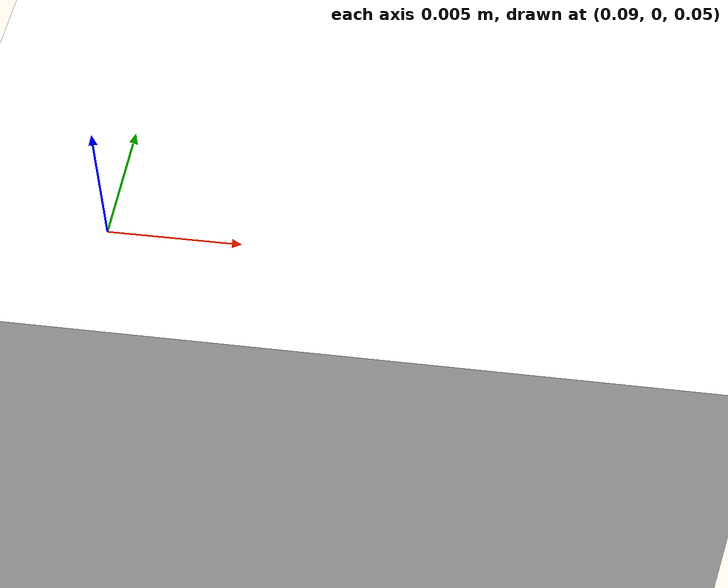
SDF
<?xml version="1.0" ?>
<sdf version="1.5">
  <world name="hitl_iris_world">
    <include>
      <uri>model://land_pad</uri>
      <pose>0 0 0.05 0 0 0</pose>
    </include>
    <scene>
      <ambient>0.7 0.7 0.7 1</ambient>
      <background>0.7 0.7 0.7 1</background>
      <shadows>false</shadows>
    </scene>

    <gui fullscreen='0'>
      <camera name='user_camera'>
        <pose>-12.0 -3.0 10.0 0 0.5 0.2</pose>
        <view_controller>orbit</view_controller>
        <projection_type>perspective</projection_type>
      </camera>
    </gui>

    <include>
      <uri>model://sun</uri>
    </include>

    <physics name='default_physics' default='0' type='ode'>
      <gravity>0 0 -9.8066</gravity>
      <ode>
        <solver>
          <type>quick</type>
          <iters>10</iters>
          <sor>1.3</sor>
          <use_dynamic_moi_rescaling>0</use_dynamic_moi_rescaling>
        </solver>
        <constraints>
          <cfm>0</cfm>
          <erp>0.2</erp>
          <contact_max_correcting_vel>100</contact_max_correcting_vel>
          <contact_surface_layer>0.001</contact_surface_layer>
        </constraints>
      </ode>
      <max_step_size>0.004</max_step_size>
      <real_time_factor>1</real_time_factor>
      <real_time_update_rate>250</real_time_update_rate>
      <magnetic_field>6.0e-6 2.3e-5 -4.2e-5</magnetic_field>
    </physics>
    <include>
      <uri>model://ground_plane</uri>
    </include>
    <include>
      <uri>model://asphalt_plane</uri>
    </include>
  </world>
</sdf>

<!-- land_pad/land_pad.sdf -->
<sdf version="1.5">
  <model name="land_pad">
    <pose>0.0 0.0 0.06 0 0 0</pose>
    <link name="link">
        <inertial>
        <pose>0 0 0 0 0 0</pose>
        <mass>10.0</mass>
        <inertia>
          <ixx>0.01</ixx>
          <ixy>0</ixy>
          <ixz>0</ixz>
          <iyy>0.01</iyy>
          <iyz>0</iyz>
          <izz>0.01</izz>
        </inertia>
      </inertial>
      <kinematic>true</kinematic>
      <collision name="collision">
        <geometry>
          <box>
            <size>0.8 0.8 0.01</size>
          </box>
        </geometry>
        <surface>
          <friction>
            <ode>
              <mu>1.0</mu>
              <mu2>1.0</mu2>
              <fdir1>1 0 0</fdir1>
            </ode>
          </friction>
          <contact>
            <ode>
              <kp>1e+12</kp>
              <kd>1</kd>
              <max_vel>10</max_vel>
              <min_depth>0.003</min_depth>
            </ode>
          </contact>
        </surface>
      </collision>
      <visual name="visual">
        <geometry>
          <box>
            <size>0.5 0.5 0.02</size>
          </box>
        </geometry>
        <!-- Aruco marker as the land pad structure -->
        <material>
          <script>
            <uri>model://land_pad/materials/scripts</uri>
            <uri>model://land_pad/materials/textures</uri>
            <name>ArucoVisualMarker0/Marker</name>
          </script>
          <ambient>1 1 1 1</ambient>
          <diffuse>1 1 1 1</diffuse>
          <specular>0 0 0 1</specular>
          <emissive>1 1 1 0</emissive>
          <shader type='vertex'>
            <normal_map>__default__</normal_map>
          </shader>
        </material>
      </visual>
    </link>
    <!-- Add a GPS on the land pad -->
    <include>
      <uri>model://gps</uri>
      <pose>0.1 0 0 0 0 0</pose>
      <name>gps_target</name>
    </include>
    <joint name='gps_target_joint' type='fixed'>
      <child>gps_target::link</child>
      <parent>link</parent>
    </joint>

    <plugin name="random" filename="libgazebo_random_velocity_plugin.so">

      <!-- Name of the link in this model that receives the velocity -->
      <link>link</link>

      <!-- Initial velocity that is applied to the link -->
      <initial_velocity>0 0 0</initial_velocity>

      <!-- Scaling factor that is used to compute a new velocity -->
      <velocity_factor>0.0</velocity_factor>

      <!-- Time, in seconds, between new velocities -->
      <update_period>20</update_period>

      <!-- Clamp the Z velocity value to zero. You can also clamp x and
          y values -->
      <min_z>0</min_z>
      <max_z>0</max_z>
    </plugin>
  </model>
</sdf>

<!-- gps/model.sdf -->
<sdf version="1.6">
  <model name="gps">
    <link name="link">
      <pose>0 0 0 0 0 0</pose>
      <inertial>
        <pose>0 0 0 0 0 0</pose>
        <mass>0.015</mass>
        <inertia>
          <ixx>1e-05</ixx>
          <ixy>0</ixy>
          <ixz>0</ixz>
          <iyy>1e-05</iyy>
          <iyz>0</iyz>
          <izz>1e-05</izz>
        </inertia>
      </inertial>
      <visual name="visual">
        <geometry>
          <cylinder>
            <radius>0.01</radius>
            <length>0.002</length>
          </cylinder>
        </geometry>
        <material>
          <script>
            <name>Gazebo/Black</name>
            <uri>file://usr/share/gz/gz-sim8/media/gazebo.material</uri>
          </script>
        </material>
      </visual>
      <sensor name="gps" type="gps">
        <pose>0 0 0 0 0 0</pose>
        <update_rate>5.0</update_rate>
        <always_on>true</always_on>
        <visualize>false</visualize>
        <!-- GpsSensor noise currently not used -->
        <plugin name="gps_plugin" filename="libgazebo_gps_plugin.so">
          <robotNamespace></robotNamespace>
          <gpsNoise>true</gpsNoise>
          <gpsXYRandomWalk>2.0</gpsXYRandomWalk>
          <gpsZRandomWalk>4.0</gpsZRandomWalk>
          <gpsXYNoiseDensity>2.0e-4</gpsXYNoiseDensity>
          <gpsZNoiseDensity>4.0e-4</gpsZNoiseDensity>
          <gpsVXYNoiseDensity>0.2</gpsVXYNoiseDensity>
          <gpsVZNoiseDensity>0.4</gpsVZNoiseDensity>
        </plugin>
      </sensor>
    </link>
  </model>
</sdf>
